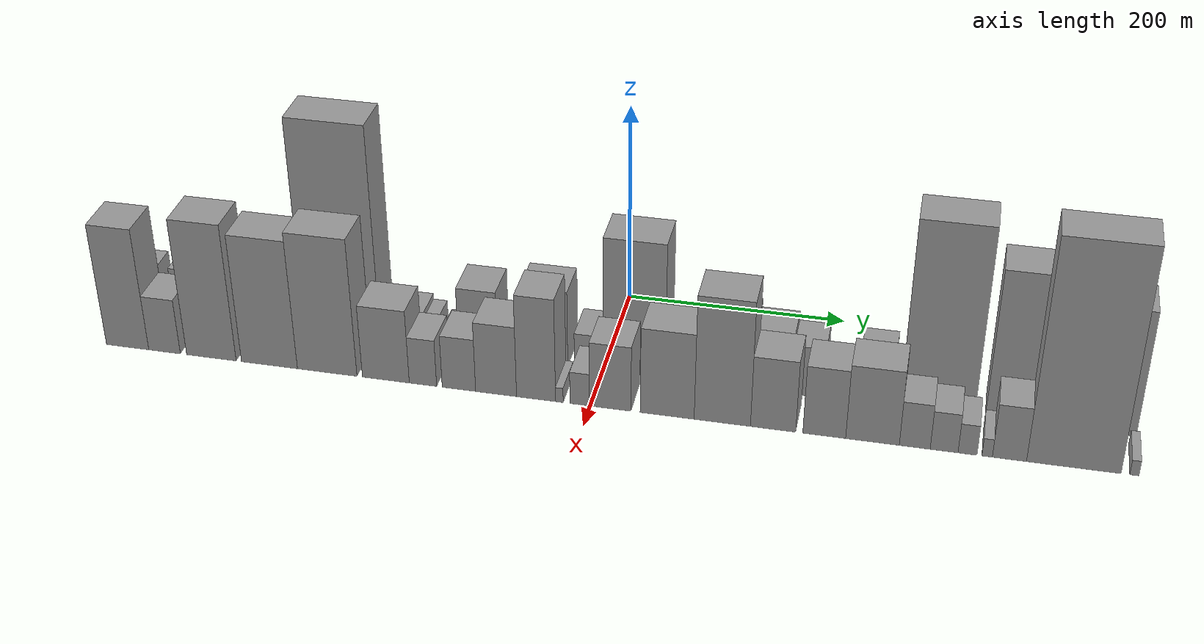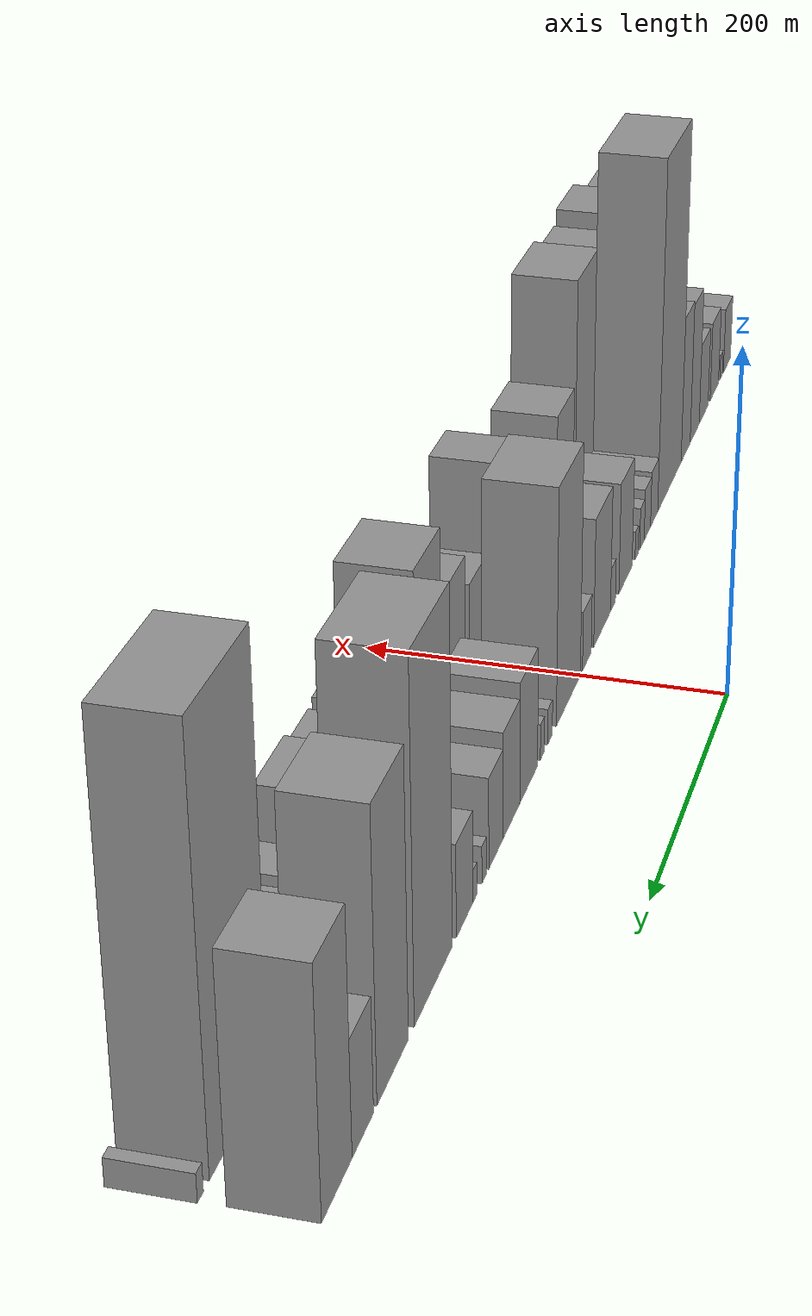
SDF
<sdf version="1.6">
 <world name="default">
  <scene>
   <sky><clouds><speed>12</speed></clouds></sky>
   <ambient>0.4 0.4 0.4 1</ambient>
   <background>0.7 0.7 0.7 1</background>
   <shadows>1</shadows>
  </scene>
  <gravity>0 0 -9.8066</gravity>
  <magnetic_field>6e-06 2.3e-05 -4.2e-05</magnetic_field>
  <physics default="0" name="default_physics" type="ode">
   <ode>
    <solver>
     <type>quick</type>
     <iters>10</iters>
     <sor>1.0</sor>
     <use_dynamic_moi_rescaling>0</use_dynamic_moi_rescaling>
    </solver>
    <constraints>
     <cfm>0</cfm>
     <erp>0.2</erp>
     <contact_max_correcting_vel>100</contact_max_correcting_vel>
     <contact_surface_layer>0.001</contact_surface_layer>
    </constraints>
   </ode>
   <max_step_size>0.004</max_step_size>
   <real_time_factor>1</real_time_factor>
   <real_time_update_rate>250</real_time_update_rate>
  </physics>
  <light name="sun" type="directional">
   <pose>0 0 10 0 0 0</pose>
   <diffuse>0.8 0.8 0.8 1</diffuse>
   <specular>0.2 0.2 0.2 1</specular>
   <attenuation>
    <range>1000</range>
    <constant>0.9</constant>
    <linear>0.01</linear>
    <quadratic>0.001</quadratic>
   </attenuation>
   <direction>-0.5 0.1 -0.9</direction>
  </light>
  <model name="building_1">
   <static>1</static>
   <pose>100.0000 -431.0499 0 0.000000 0.000000 0.000000</pose>
   <link name="link">
    <pose>0 0 22.50 0 0 0</pose>
    <collision name="collision"><geometry><box><size>40.0000 25.9003 45.0000</size></box></geometry></collision>
    <visual name="visual">
     <cast_shadows>0</cast_shadows>
     <geometry><box><size>40.0000 25.9003 45.0000</size></box></geometry>
     <material>
      <script>
       <uri>model://grey_wall/materials/scripts</uri>
       <uri>model://grey_wall/materials/textures</uri>
       <name>vrc/grey_wall</name>
      </script>
     </material>
    </visual>
   </link>
  </model>
  <model name="building_2">
   <static>1</static>
   <pose>100.0000 -409.7361 0 0.000000 0.000000 0.000000</pose>
   <link name="link">
    <pose>0 0 9.00 0 0 0</pose>
    <collision name="collision"><geometry><box><size>40.0000 8.7272 18.0000</size></box></geometry></collision>
    <visual name="visual">
     <cast_shadows>0</cast_shadows>
     <geometry><box><size>40.0000 8.7272 18.0000</size></box></geometry>
     <material>
      <script>
       <uri>model://grey_wall/materials/scripts</uri>
       <uri>model://grey_wall/materials/textures</uri>
       <name>vrc/grey_wall</name>
      </script>
     </material>
    </visual>
   </link>
  </model>
  <model name="building_3">
   <static>1</static>
   <pose>100.0000 -385.6956 0 0.000000 0.000000 0.000000</pose>
   <link name="link">
    <pose>0 0 27.00 0 0 0</pose>
    <collision name="collision"><geometry><box><size>40.0000 29.3539 54.0000</size></box></geometry></collision>
    <visual name="visual">
     <cast_shadows>0</cast_shadows>
     <geometry><box><size>40.0000 29.3539 54.0000</size></box></geometry>
     <material>
      <script>
       <uri>model://grey_wall/materials/scripts</uri>
       <uri>model://grey_wall/materials/textures</uri>
       <name>vrc/grey_wall</name>
      </script>
     </material>
    </visual>
   </link>
  </model>
  <model name="building_4">
   <static>1</static>
   <pose>100.0000 -348.9732 0 0.000000 0.000000 0.000000</pose>
   <link name="link">
    <pose>0 0 27.00 0 0 0</pose>
    <collision name="collision"><geometry><box><size>40.0000 30.0909 54.0000</size></box></geometry></collision>
    <visual name="visual">
     <cast_shadows>0</cast_shadows>
     <geometry><box><size>40.0000 30.0909 54.0000</size></box></geometry>
     <material>
      <script>
       <uri>model://grey_wall/materials/scripts</uri>
       <uri>model://grey_wall/materials/textures</uri>
       <name>vrc/grey_wall</name>
      </script>
     </material>
    </visual>
   </link>
  </model>
  <model name="building_5">
   <static>1</static>
   <pose>100.0000 -318.9866 0 0.000000 0.000000 0.000000</pose>
   <link name="link">
    <pose>0 0 46.50 0 0 0</pose>
    <collision name="collision"><geometry><box><size>40.0000 29.8823 93.0000</size></box></geometry></collision>
    <visual name="visual">
     <cast_shadows>0</cast_shadows>
     <geometry><box><size>40.0000 29.8823 93.0000</size></box></geometry>
     <material>
      <script>
       <uri>model://grey_wall/materials/scripts</uri>
       <uri>model://grey_wall/materials/textures</uri>
       <name>vrc/grey_wall</name>
      </script>
     </material>
    </visual>
   </link>
  </model>
  <model name="building_6">
   <static>1</static>
   <pose>100.0000 -289.5992 0 0.000000 0.000000 0.000000</pose>
   <link name="link">
    <pose>0 0 48.00 0 0 0</pose>
    <collision name="collision"><geometry><box><size>40.0000 28.8924 96.0000</size></box></geometry></collision>
    <visual name="visual">
     <cast_shadows>0</cast_shadows>
     <geometry><box><size>40.0000 28.8924 96.0000</size></box></geometry>
     <material>
      <script>
       <uri>model://grey_wall/materials/scripts</uri>
       <uri>model://grey_wall/materials/textures</uri>
       <name>vrc/grey_wall</name>
      </script>
     </material>
    </visual>
   </link>
  </model>
  <model name="building_7">
   <static>1</static>
   <pose>100.0000 -239.4603 0 0.000000 0.000000 0.000000</pose>
   <link name="link">
    <pose>0 0 111.00 0 0 0</pose>
    <collision name="collision"><geometry><box><size>40.0000 71.3854 222.0000</size></box></geometry></collision>
    <visual name="visual">
     <cast_shadows>0</cast_shadows>
     <geometry><box><size>40.0000 71.3854 222.0000</size></box></geometry>
     <material>
      <script>
       <uri>model://grey_wall/materials/scripts</uri>
       <uri>model://grey_wall/materials/textures</uri>
       <name>vrc/grey_wall</name>
      </script>
     </material>
    </visual>
   </link>
  </model>
  <model name="building_8">
   <static>1</static>
   <pose>100.0000 -193.3095 0 0.000000 0.000000 0.000000</pose>
   <link name="link">
    <pose>0 0 18.00 0 0 0</pose>
    <collision name="collision"><geometry><box><size>40.0000 20.9163 36.0000</size></box></geometry></collision>
    <visual name="visual">
     <cast_shadows>0</cast_shadows>
     <geometry><box><size>40.0000 20.9163 36.0000</size></box></geometry>
     <material>
      <script>
       <uri>model://grey_wall/materials/scripts</uri>
       <uri>model://grey_wall/materials/textures</uri>
       <name>vrc/grey_wall</name>
      </script>
     </material>
    </visual>
   </link>
  </model>
  <model name="building_9">
   <static>1</static>
   <pose>100.0000 -173.7902 0 0.000000 0.000000 0.000000</pose>
   <link name="link">
    <pose>0 0 16.50 0 0 0</pose>
    <collision name="collision"><geometry><box><size>40.0000 18.1223 33.0000</size></box></geometry></collision>
    <visual name="visual">
     <cast_shadows>0</cast_shadows>
     <geometry><box><size>40.0000 18.1223 33.0000</size></box></geometry>
     <material>
      <script>
       <uri>model://grey_wall/materials/scripts</uri>
       <uri>model://grey_wall/materials/textures</uri>
       <name>vrc/grey_wall</name>
      </script>
     </material>
    </visual>
   </link>
  </model>
  <model name="building_10">
   <static>1</static>
   <pose>100.0000 -158.3925 0 0.000000 0.000000 0.000000</pose>
   <link name="link">
    <pose>0 0 13.50 0 0 0</pose>
    <collision name="collision"><geometry><box><size>40.0000 12.6730 27.0000</size></box></geometry></collision>
    <visual name="visual">
     <cast_shadows>0</cast_shadows>
     <geometry><box><size>40.0000 12.6730 27.0000</size></box></geometry>
     <material>
      <script>
       <uri>model://grey_wall/materials/scripts</uri>
       <uri>model://grey_wall/materials/textures</uri>
       <name>vrc/grey_wall</name>
      </script>
     </material>
    </visual>
   </link>
  </model>
  <model name="building_11">
   <static>1</static>
   <pose>100.0000 -143.6604 0 0.000000 0.000000 0.000000</pose>
   <link name="link">
    <pose>0 0 9.00 0 0 0</pose>
    <collision name="collision"><geometry><box><size>40.0000 8.7914 18.0000</size></box></geometry></collision>
    <visual name="visual">
     <cast_shadows>0</cast_shadows>
     <geometry><box><size>40.0000 8.7914 18.0000</size></box></geometry>
     <material>
      <script>
       <uri>model://grey_wall/materials/scripts</uri>
       <uri>model://grey_wall/materials/textures</uri>
       <name>vrc/grey_wall</name>
      </script>
     </material>
    </visual>
   </link>
  </model>
  <model name="building_12">
   <static>1</static>
   <pose>100.0000 -113.4471 0 0.000000 0.000000 0.000000</pose>
   <link name="link">
    <pose>0 0 34.50 0 0 0</pose>
    <collision name="collision"><geometry><box><size>40.0000 35.6351 69.0000</size></box></geometry></collision>
    <visual name="visual">
     <cast_shadows>0</cast_shadows>
     <geometry><box><size>40.0000 35.6351 69.0000</size></box></geometry>
     <material>
      <script>
       <uri>model://grey_wall/materials/scripts</uri>
       <uri>model://grey_wall/materials/textures</uri>
       <name>vrc/grey_wall</name>
      </script>
     </material>
    </visual>
   </link>
  </model>
  <model name="building_13">
   <static>1</static>
   <pose>100.0000 -80.2408 0 0.000000 0.000000 0.000000</pose>
   <link name="link">
    <pose>0 0 13.50 0 0 0</pose>
    <collision name="collision"><geometry><box><size>40.0000 12.7775 27.0000</size></box></geometry></collision>
    <visual name="visual">
     <cast_shadows>0</cast_shadows>
     <geometry><box><size>40.0000 12.7775 27.0000</size></box></geometry>
     <material>
      <script>
       <uri>model://grey_wall/materials/scripts</uri>
       <uri>model://grey_wall/materials/textures</uri>
       <name>vrc/grey_wall</name>
      </script>
     </material>
    </visual>
   </link>
  </model>
  <model name="building_14">
   <static>1</static>
   <pose>100.0000 -52.7818 0 0.000000 0.000000 0.000000</pose>
   <link name="link">
    <pose>0 0 39.00 0 0 0</pose>
    <collision name="collision"><geometry><box><size>40.0000 42.1404 78.0000</size></box></geometry></collision>
    <visual name="visual">
     <cast_shadows>0</cast_shadows>
     <geometry><box><size>40.0000 42.1404 78.0000</size></box></geometry>
     <material>
      <script>
       <uri>model://grey_wall/materials/scripts</uri>
       <uri>model://grey_wall/materials/textures</uri>
       <name>vrc/grey_wall</name>
      </script>
     </material>
    </visual>
   </link>
  </model>
  <model name="building_15">
   <static>1</static>
   <pose>100.0000 -15.1668 0 0.000000 0.000000 0.000000</pose>
   <link name="link">
    <pose>0 0 18.00 0 0 0</pose>
    <collision name="collision"><geometry><box><size>40.0000 21.0897 36.0000</size></box></geometry></collision>
    <visual name="visual">
     <cast_shadows>0</cast_shadows>
     <geometry><box><size>40.0000 21.0897 36.0000</size></box></geometry>
     <material>
      <script>
       <uri>model://grey_wall/materials/scripts</uri>
       <uri>model://grey_wall/materials/textures</uri>
       <name>vrc/grey_wall</name>
      </script>
     </material>
    </visual>
   </link>
  </model>
  <model name="building_16">
   <static>1</static>
   <pose>100.0000 27.8969 0 0.000000 0.000000 0.000000</pose>
   <link name="link">
    <pose>0 0 69.00 0 0 0</pose>
    <collision name="collision"><geometry><box><size>40.0000 55.0377 138.0000</size></box></geometry></collision>
    <visual name="visual">
     <cast_shadows>0</cast_shadows>
     <geometry><box><size>40.0000 55.0377 138.0000</size></box></geometry>
     <material>
      <script>
       <uri>model://grey_wall/materials/scripts</uri>
       <uri>model://grey_wall/materials/textures</uri>
       <name>vrc/grey_wall</name>
      </script>
     </material>
    </visual>
   </link>
  </model>
  <model name="building_17">
   <static>1</static>
   <pose>100.0000 69.4523 0 0.000000 0.000000 0.000000</pose>
   <link name="link">
    <pose>0 0 10.50 0 0 0</pose>
    <collision name="collision"><geometry><box><size>40.0000 10.0732 21.0000</size></box></geometry></collision>
    <visual name="visual">
     <cast_shadows>0</cast_shadows>
     <geometry><box><size>40.0000 10.0732 21.0000</size></box></geometry>
     <material>
      <script>
       <uri>model://grey_wall/materials/scripts</uri>
       <uri>model://grey_wall/materials/textures</uri>
       <name>vrc/grey_wall</name>
      </script>
     </material>
    </visual>
   </link>
  </model>
  <model name="building_18">
   <static>1</static>
   <pose>100.0000 85.8732 0 0.000000 0.000000 0.000000</pose>
   <link name="link">
    <pose>0 0 10.50 0 0 0</pose>
    <collision name="collision"><geometry><box><size>40.0000 8.7685 21.0000</size></box></geometry></collision>
    <visual name="visual">
     <cast_shadows>0</cast_shadows>
     <geometry><box><size>40.0000 8.7685 21.0000</size></box></geometry>
     <material>
      <script>
       <uri>model://grey_wall/materials/scripts</uri>
       <uri>model://grey_wall/materials/textures</uri>
       <name>vrc/grey_wall</name>
      </script>
     </material>
    </visual>
   </link>
  </model>
  <model name="building_19">
   <static>1</static>
   <pose>100.0000 114.6705 0 0.000000 0.000000 0.000000</pose>
   <link name="link">
    <pose>0 0 34.50 0 0 0</pose>
    <collision name="collision"><geometry><box><size>40.0000 36.8261 69.0000</size></box></geometry></collision>
    <visual name="visual">
     <cast_shadows>0</cast_shadows>
     <geometry><box><size>40.0000 36.8261 69.0000</size></box></geometry>
     <material>
      <script>
       <uri>model://grey_wall/materials/scripts</uri>
       <uri>model://grey_wall/materials/textures</uri>
       <name>vrc/grey_wall</name>
      </script>
     </material>
    </visual>
   </link>
  </model>
  <model name="building_20">
   <static>1</static>
   <pose>100.0000 149.6010 0 0.000000 0.000000 0.000000</pose>
   <link name="link">
    <pose>0 0 30.00 0 0 0</pose>
    <collision name="collision"><geometry><box><size>40.0000 33.0349 60.0000</size></box></geometry></collision>
    <visual name="visual">
     <cast_shadows>0</cast_shadows>
     <geometry><box><size>40.0000 33.0349 60.0000</size></box></geometry>
     <material>
      <script>
       <uri>model://grey_wall/materials/scripts</uri>
       <uri>model://grey_wall/materials/textures</uri>
       <name>vrc/grey_wall</name>
      </script>
     </material>
    </visual>
   </link>
  </model>
  <model name="building_21">
   <static>1</static>
   <pose>100.0000 179.8308 0 0.000000 0.000000 0.000000</pose>
   <link name="link">
    <pose>0 0 25.50 0 0 0</pose>
    <collision name="collision"><geometry><box><size>40.0000 27.4247 51.0000</size></box></geometry></collision>
    <visual name="visual">
     <cast_shadows>0</cast_shadows>
     <geometry><box><size>40.0000 27.4247 51.0000</size></box></geometry>
     <material>
      <script>
       <uri>model://grey_wall/materials/scripts</uri>
       <uri>model://grey_wall/materials/textures</uri>
       <name>vrc/grey_wall</name>
      </script>
     </material>
    </visual>
   </link>
  </model>
  <model name="building_22">
   <static>1</static>
   <pose>100.0000 201.9559 0 0.000000 0.000000 0.000000</pose>
   <link name="link">
    <pose>0 0 10.50 0 0 0</pose>
    <collision name="collision"><geometry><box><size>40.0000 8.8255 21.0000</size></box></geometry></collision>
    <visual name="visual">
     <cast_shadows>0</cast_shadows>
     <geometry><box><size>40.0000 8.8255 21.0000</size></box></geometry>
     <material>
      <script>
       <uri>model://grey_wall/materials/scripts</uri>
       <uri>model://grey_wall/materials/textures</uri>
       <name>vrc/grey_wall</name>
      </script>
     </material>
    </visual>
   </link>
  </model>
  <model name="building_23">
   <static>1</static>
   <pose>100.0000 218.9924 0 0.000000 0.000000 0.000000</pose>
   <link name="link">
    <pose>0 0 9.00 0 0 0</pose>
    <collision name="collision"><geometry><box><size>40.0000 7.2474 18.0000</size></box></geometry></collision>
    <visual name="visual">
     <cast_shadows>0</cast_shadows>
     <geometry><box><size>40.0000 7.2474 18.0000</size></box></geometry>
     <material>
      <script>
       <uri>model://grey_wall/materials/scripts</uri>
       <uri>model://grey_wall/materials/textures</uri>
       <name>vrc/grey_wall</name>
      </script>
     </material>
    </visual>
   </link>
  </model>
  <model name="building_24">
   <static>1</static>
   <pose>100.0000 237.4584 0 0.000000 0.000000 0.000000</pose>
   <link name="link">
    <pose>0 0 25.50 0 0 0</pose>
    <collision name="collision"><geometry><box><size>40.0000 29.6846 51.0000</size></box></geometry></collision>
    <visual name="visual">
     <cast_shadows>0</cast_shadows>
     <geometry><box><size>40.0000 29.6846 51.0000</size></box></geometry>
     <material>
      <script>
       <uri>model://grey_wall/materials/scripts</uri>
       <uri>model://grey_wall/materials/textures</uri>
       <name>vrc/grey_wall</name>
      </script>
     </material>
    </visual>
   </link>
  </model>
  <model name="building_25">
   <static>1</static>
   <pose>100.0000 290.7979 0 0.000000 0.000000 0.000000</pose>
   <link name="link">
    <pose>0 0 94.50 0 0 0</pose>
    <collision name="collision"><geometry><box><size>40.0000 62.9945 189.0000</size></box></geometry></collision>
    <visual name="visual">
     <cast_shadows>0</cast_shadows>
     <geometry><box><size>40.0000 62.9945 189.0000</size></box></geometry>
     <material>
      <script>
       <uri>model://grey_wall/materials/scripts</uri>
       <uri>model://grey_wall/materials/textures</uri>
       <name>vrc/grey_wall</name>
      </script>
     </material>
    </visual>
   </link>
  </model>
  <model name="building_26">
   <static>1</static>
   <pose>100.0000 355.1577 0 0.000000 0.000000 0.000000</pose>
   <link name="link">
    <pose>0 0 75.00 0 0 0</pose>
    <collision name="collision"><geometry><box><size>40.0000 47.7251 150.0000</size></box></geometry></collision>
    <visual name="visual">
     <cast_shadows>0</cast_shadows>
     <geometry><box><size>40.0000 47.7251 150.0000</size></box></geometry>
     <material>
      <script>
       <uri>model://grey_wall/materials/scripts</uri>
       <uri>model://grey_wall/materials/textures</uri>
       <name>vrc/grey_wall</name>
      </script>
     </material>
    </visual>
   </link>
  </model>
  <model name="building_27">
   <static>1</static>
   <pose>100.0000 399.2218 0 0.000000 0.000000 0.000000</pose>
   <link name="link">
    <pose>0 0 30.00 0 0 0</pose>
    <collision name="collision"><geometry><box><size>40.0000 30.4030 60.0000</size></box></geometry></collision>
    <visual name="visual">
     <cast_shadows>0</cast_shadows>
     <geometry><box><size>40.0000 30.4030 60.0000</size></box></geometry>
     <material>
      <script>
       <uri>model://grey_wall/materials/scripts</uri>
       <uri>model://grey_wall/materials/textures</uri>
       <name>vrc/grey_wall</name>
      </script>
     </material>
    </visual>
   </link>
  </model>
  <model name="building_28">
   <static>1</static>
   <pose>100.0000 435.1679 0 0.000000 0.000000 0.000000</pose>
   <link name="link">
    <pose>0 0 63.00 0 0 0</pose>
    <collision name="collision"><geometry><box><size>40.0000 41.4891 126.0000</size></box></geometry></collision>
    <visual name="visual">
     <cast_shadows>0</cast_shadows>
     <geometry><box><size>40.0000 41.4891 126.0000</size></box></geometry>
     <material>
      <script>
       <uri>model://grey_wall/materials/scripts</uri>
       <uri>model://grey_wall/materials/textures</uri>
       <name>vrc/grey_wall</name>
      </script>
     </material>
    </visual>
   </link>
  </model>
  <model name="building_29">
   <static>1</static>
   <pose>152.0000 -423.7714 0 0.000000 0.000000 0.000000</pose>
   <link name="link">
    <pose>0 0 63.00 0 0 0</pose>
    <collision name="collision"><geometry><box><size>40.0000 40.4572 126.0000</size></box></geometry></collision>
    <visual name="visual">
     <cast_shadows>0</cast_shadows>
     <geometry><box><size>40.0000 40.4572 126.0000</size></box></geometry>
     <material>
      <script>
       <uri>model://grey_wall/materials/scripts</uri>
       <uri>model://grey_wall/materials/textures</uri>
       <name>vrc/grey_wall</name>
      </script>
     </material>
    </visual>
   </link>
  </model>
  <model name="building_30">
   <static>1</static>
   <pose>152.0000 -388.5520 0 0.000000 0.000000 0.000000</pose>
   <link name="link">
    <pose>0 0 28.50 0 0 0</pose>
    <collision name="collision"><geometry><box><size>40.0000 29.9816 57.0000</size></box></geometry></collision>
    <visual name="visual">
     <cast_shadows>0</cast_shadows>
     <geometry><box><size>40.0000 29.9816 57.0000</size></box></geometry>
     <material>
      <script>
       <uri>model://grey_wall/materials/scripts</uri>
       <uri>model://grey_wall/materials/textures</uri>
       <name>vrc/grey_wall</name>
      </script>
     </material>
    </visual>
   </link>
  </model>
  <model name="building_31">
   <static>1</static>
   <pose>152.0000 -344.2569 0 0.000000 0.000000 0.000000</pose>
   <link name="link">
    <pose>0 0 70.50 0 0 0</pose>
    <collision name="collision"><geometry><box><size>40.0000 46.6085 141.0000</size></box></geometry></collision>
    <visual name="visual">
     <cast_shadows>0</cast_shadows>
     <geometry><box><size>40.0000 46.6085 141.0000</size></box></geometry>
     <material>
      <script>
       <uri>model://grey_wall/materials/scripts</uri>
       <uri>model://grey_wall/materials/textures</uri>
       <name>vrc/grey_wall</name>
      </script>
     </material>
    </visual>
   </link>
  </model>
  <model name="building_32">
   <static>1</static>
   <pose>152.0000 -289.8983 0 0.000000 0.000000 0.000000</pose>
   <link name="link">
    <pose>0 0 66.00 0 0 0</pose>
    <collision name="collision"><geometry><box><size>40.0000 52.1088 132.0000</size></box></geometry></collision>
    <visual name="visual">
     <cast_shadows>0</cast_shadows>
     <geometry><box><size>40.0000 52.1088 132.0000</size></box></geometry>
     <material>
      <script>
       <uri>model://grey_wall/materials/scripts</uri>
       <uri>model://grey_wall/materials/textures</uri>
       <name>vrc/grey_wall</name>
      </script>
     </material>
    </visual>
   </link>
  </model>
  <model name="building_33">
   <static>1</static>
   <pose>152.0000 -236.4168 0 0.000000 0.000000 0.000000</pose>
   <link name="link">
    <pose>0 0 70.50 0 0 0</pose>
    <collision name="collision"><geometry><box><size>40.0000 54.8543 141.0000</size></box></geometry></collision>
    <visual name="visual">
     <cast_shadows>0</cast_shadows>
     <geometry><box><size>40.0000 54.8543 141.0000</size></box></geometry>
     <material>
      <script>
       <uri>model://grey_wall/materials/scripts</uri>
       <uri>model://grey_wall/materials/textures</uri>
       <name>vrc/grey_wall</name>
      </script>
     </material>
    </visual>
   </link>
  </model>
  <model name="building_34">
   <static>1</static>
   <pose>152.0000 -182.6708 0 0.000000 0.000000 0.000000</pose>
   <link name="link">
    <pose>0 0 37.50 0 0 0</pose>
    <collision name="collision"><geometry><box><size>40.0000 42.6376 75.0000</size></box></geometry></collision>
    <visual name="visual">
     <cast_shadows>0</cast_shadows>
     <geometry><box><size>40.0000 42.6376 75.0000</size></box></geometry>
     <material>
      <script>
       <uri>model://grey_wall/materials/scripts</uri>
       <uri>model://grey_wall/materials/textures</uri>
       <name>vrc/grey_wall</name>
      </script>
     </material>
    </visual>
   </link>
  </model>
  <model name="building_35">
   <static>1</static>
   <pose>152.0000 -148.9712 0 0.000000 0.000000 0.000000</pose>
   <link name="link">
    <pose>0 0 24.00 0 0 0</pose>
    <collision name="collision"><geometry><box><size>40.0000 24.7617 48.0000</size></box></geometry></collision>
    <visual name="visual">
     <cast_shadows>0</cast_shadows>
     <geometry><box><size>40.0000 24.7617 48.0000</size></box></geometry>
     <material>
      <script>
       <uri>model://grey_wall/materials/scripts</uri>
       <uri>model://grey_wall/materials/textures</uri>
       <name>vrc/grey_wall</name>
      </script>
     </material>
    </visual>
   </link>
  </model>
  <model name="building_36">
   <static>1</static>
   <pose>152.0000 -116.5907 0 0.000000 0.000000 0.000000</pose>
   <link name="link">
    <pose>0 0 27.00 0 0 0</pose>
    <collision name="collision"><geometry><box><size>40.0000 29.9994 54.0000</size></box></geometry></collision>
    <visual name="visual">
     <cast_shadows>0</cast_shadows>
     <geometry><box><size>40.0000 29.9994 54.0000</size></box></geometry>
     <material>
      <script>
       <uri>model://grey_wall/materials/scripts</uri>
       <uri>model://grey_wall/materials/textures</uri>
       <name>vrc/grey_wall</name>
      </script>
     </material>
    </visual>
   </link>
  </model>
  <model name="building_37">
   <static>1</static>
   <pose>152.0000 -83.3506 0 0.000000 0.000000 0.000000</pose>
   <link name="link">
    <pose>0 0 36.00 0 0 0</pose>
    <collision name="collision"><geometry><box><size>40.0000 36.4808 72.0000</size></box></geometry></collision>
    <visual name="visual">
     <cast_shadows>0</cast_shadows>
     <geometry><box><size>40.0000 36.4808 72.0000</size></box></geometry>
     <material>
      <script>
       <uri>model://grey_wall/materials/scripts</uri>
       <uri>model://grey_wall/materials/textures</uri>
       <name>vrc/grey_wall</name>
      </script>
     </material>
    </visual>
   </link>
  </model>
  <model name="building_38">
   <static>1</static>
   <pose>152.0000 -47.8489 0 0.000000 0.000000 0.000000</pose>
   <link name="link">
    <pose>0 0 52.50 0 0 0</pose>
    <collision name="collision"><geometry><box><size>40.0000 34.5227 105.0000</size></box></geometry></collision>
    <visual name="visual">
     <cast_shadows>0</cast_shadows>
     <geometry><box><size>40.0000 34.5227 105.0000</size></box></geometry>
     <material>
      <script>
       <uri>model://grey_wall/materials/scripts</uri>
       <uri>model://grey_wall/materials/textures</uri>
       <name>vrc/grey_wall</name>
      </script>
     </material>
    </visual>
   </link>
  </model>
  <model name="building_39">
   <static>1</static>
   <pose>152.0000 -27.2419 0 0.000000 0.000000 0.000000</pose>
   <link name="link">
    <pose>0 0 7.50 0 0 0</pose>
    <collision name="collision"><geometry><box><size>40.0000 6.6913 15.0000</size></box></geometry></collision>
    <visual name="visual">
     <cast_shadows>0</cast_shadows>
     <geometry><box><size>40.0000 6.6913 15.0000</size></box></geometry>
     <material>
      <script>
       <uri>model://grey_wall/materials/scripts</uri>
       <uri>model://grey_wall/materials/textures</uri>
       <name>vrc/grey_wall</name>
      </script>
     </material>
    </visual>
   </link>
  </model>
  <model name="building_40">
   <static>1</static>
   <pose>152.0000 -9.4666 0 0.000000 0.000000 0.000000</pose>
   <link name="link">
    <pose>0 0 16.50 0 0 0</pose>
    <collision name="collision"><geometry><box><size>40.0000 16.8592 33.0000</size></box></geometry></collision>
    <visual name="visual">
     <cast_shadows>0</cast_shadows>
     <geometry><box><size>40.0000 16.8592 33.0000</size></box></geometry>
     <material>
      <script>
       <uri>model://grey_wall/materials/scripts</uri>
       <uri>model://grey_wall/materials/textures</uri>
       <name>vrc/grey_wall</name>
      </script>
     </material>
    </visual>
   </link>
  </model>
  <model name="building_41">
   <static>1</static>
   <pose>152.0000 17.1698 0 0.000000 0.000000 0.000000</pose>
   <link name="link">
    <pose>0 0 33.00 0 0 0</pose>
    <collision name="collision"><geometry><box><size>40.0000 36.4137 66.0000</size></box></geometry></collision>
    <visual name="visual">
     <cast_shadows>0</cast_shadows>
     <geometry><box><size>40.0000 36.4137 66.0000</size></box></geometry>
     <material>
      <script>
       <uri>model://grey_wall/materials/scripts</uri>
       <uri>model://grey_wall/materials/textures</uri>
       <name>vrc/grey_wall</name>
      </script>
     </material>
    </visual>
   </link>
  </model>
  <model name="building_42">
   <static>1</static>
   <pose>152.0000 66.6796 0 0.000000 0.000000 0.000000</pose>
   <link name="link">
    <pose>0 0 43.50 0 0 0</pose>
    <collision name="collision"><geometry><box><size>40.0000 46.6059 87.0000</size></box></geometry></collision>
    <visual name="visual">
     <cast_shadows>0</cast_shadows>
     <geometry><box><size>40.0000 46.6059 87.0000</size></box></geometry>
     <material>
      <script>
       <uri>model://grey_wall/materials/scripts</uri>
       <uri>model://grey_wall/materials/textures</uri>
       <name>vrc/grey_wall</name>
      </script>
     </material>
    </visual>
   </link>
  </model>
  <model name="building_43">
   <static>1</static>
   <pose>152.0000 114.0362 0 0.000000 0.000000 0.000000</pose>
   <link name="link">
    <pose>0 0 63.00 0 0 0</pose>
    <collision name="collision"><geometry><box><size>40.0000 48.1072 126.0000</size></box></geometry></collision>
    <visual name="visual">
     <cast_shadows>0</cast_shadows>
     <geometry><box><size>40.0000 48.1072 126.0000</size></box></geometry>
     <material>
      <script>
       <uri>model://grey_wall/materials/scripts</uri>
       <uri>model://grey_wall/materials/textures</uri>
       <name>vrc/grey_wall</name>
      </script>
     </material>
    </visual>
   </link>
  </model>
  <model name="building_44">
   <static>1</static>
   <pose>152.0000 157.2365 0 0.000000 0.000000 0.000000</pose>
   <link name="link">
    <pose>0 0 36.00 0 0 0</pose>
    <collision name="collision"><geometry><box><size>40.0000 38.2934 72.0000</size></box></geometry></collision>
    <visual name="visual">
     <cast_shadows>0</cast_shadows>
     <geometry><box><size>40.0000 38.2934 72.0000</size></box></geometry>
     <material>
      <script>
       <uri>model://grey_wall/materials/scripts</uri>
       <uri>model://grey_wall/materials/textures</uri>
       <name>vrc/grey_wall</name>
      </script>
     </material>
    </visual>
   </link>
  </model>
  <model name="building_45">
   <static>1</static>
   <pose>152.0000 200.3274 0 0.000000 0.000000 0.000000</pose>
   <link name="link">
    <pose>0 0 34.50 0 0 0</pose>
    <collision name="collision"><geometry><box><size>40.0000 35.8884 69.0000</size></box></geometry></collision>
    <visual name="visual">
     <cast_shadows>0</cast_shadows>
     <geometry><box><size>40.0000 35.8884 69.0000</size></box></geometry>
     <material>
      <script>
       <uri>model://grey_wall/materials/scripts</uri>
       <uri>model://grey_wall/materials/textures</uri>
       <name>vrc/grey_wall</name>
      </script>
     </material>
    </visual>
   </link>
  </model>
  <model name="building_46">
   <static>1</static>
   <pose>152.0000 240.5533 0 0.000000 0.000000 0.000000</pose>
   <link name="link">
    <pose>0 0 37.50 0 0 0</pose>
    <collision name="collision"><geometry><box><size>40.0000 44.5635 75.0000</size></box></geometry></collision>
    <visual name="visual">
     <cast_shadows>0</cast_shadows>
     <geometry><box><size>40.0000 44.5635 75.0000</size></box></geometry>
     <material>
      <script>
       <uri>model://grey_wall/materials/scripts</uri>
       <uri>model://grey_wall/materials/textures</uri>
       <name>vrc/grey_wall</name>
      </script>
     </material>
    </visual>
   </link>
  </model>
  <model name="building_47">
   <static>1</static>
   <pose>152.0000 275.5638 0 0.000000 0.000000 0.000000</pose>
   <link name="link">
    <pose>0 0 22.50 0 0 0</pose>
    <collision name="collision"><geometry><box><size>40.0000 25.4574 45.0000</size></box></geometry></collision>
    <visual name="visual">
     <cast_shadows>0</cast_shadows>
     <geometry><box><size>40.0000 25.4574 45.0000</size></box></geometry>
     <material>
      <script>
       <uri>model://grey_wall/materials/scripts</uri>
       <uri>model://grey_wall/materials/textures</uri>
       <name>vrc/grey_wall</name>
      </script>
     </material>
    </visual>
   </link>
  </model>
  <model name="building_48">
   <static>1</static>
   <pose>152.0000 299.7214 0 0.000000 0.000000 0.000000</pose>
   <link name="link">
    <pose>0 0 19.50 0 0 0</pose>
    <collision name="collision"><geometry><box><size>40.0000 22.8578 39.0000</size></box></geometry></collision>
    <visual name="visual">
     <cast_shadows>0</cast_shadows>
     <geometry><box><size>40.0000 22.8578 39.0000</size></box></geometry>
     <material>
      <script>
       <uri>model://grey_wall/materials/scripts</uri>
       <uri>model://grey_wall/materials/textures</uri>
       <name>vrc/grey_wall</name>
      </script>
     </material>
    </visual>
   </link>
  </model>
  <model name="building_49">
   <static>1</static>
   <pose>152.0000 318.9191 0 0.000000 0.000000 0.000000</pose>
   <link name="link">
    <pose>0 0 15.00 0 0 0</pose>
    <collision name="collision"><geometry><box><size>40.0000 15.5376 30.0000</size></box></geometry></collision>
    <visual name="visual">
     <cast_shadows>0</cast_shadows>
     <geometry><box><size>40.0000 15.5376 30.0000</size></box></geometry>
     <material>
      <script>
       <uri>model://grey_wall/materials/scripts</uri>
       <uri>model://grey_wall/materials/textures</uri>
       <name>vrc/grey_wall</name>
      </script>
     </material>
    </visual>
   </link>
  </model>
  <model name="building_50">
   <static>1</static>
   <pose>152.0000 334.9113 0 0.000000 0.000000 0.000000</pose>
   <link name="link">
    <pose>0 0 9.00 0 0 0</pose>
    <collision name="collision"><geometry><box><size>40.0000 8.4468 18.0000</size></box></geometry></collision>
    <visual name="visual">
     <cast_shadows>0</cast_shadows>
     <geometry><box><size>40.0000 8.4468 18.0000</size></box></geometry>
     <material>
      <script>
       <uri>model://grey_wall/materials/scripts</uri>
       <uri>model://grey_wall/materials/textures</uri>
       <name>vrc/grey_wall</name>
      </script>
     </material>
    </visual>
   </link>
  </model>
  <model name="building_51">
   <static>1</static>
   <pose>152.0000 352.9756 0 0.000000 0.000000 0.000000</pose>
   <link name="link">
    <pose>0 0 27.00 0 0 0</pose>
    <collision name="collision"><geometry><box><size>40.0000 27.6819 54.0000</size></box></geometry></collision>
    <visual name="visual">
     <cast_shadows>0</cast_shadows>
     <geometry><box><size>40.0000 27.6819 54.0000</size></box></geometry>
     <material>
      <script>
       <uri>model://grey_wall/materials/scripts</uri>
       <uri>model://grey_wall/materials/textures</uri>
       <name>vrc/grey_wall</name>
      </script>
     </material>
    </visual>
   </link>
  </model>
  <model name="building_52">
   <static>1</static>
   <pose>152.0000 404.7036 0 0.000000 0.000000 0.000000</pose>
   <link name="link">
    <pose>0 0 109.50 0 0 0</pose>
    <collision name="collision"><geometry><box><size>40.0000 75.7741 219.0000</size></box></geometry></collision>
    <visual name="visual">
     <cast_shadows>0</cast_shadows>
     <geometry><box><size>40.0000 75.7741 219.0000</size></box></geometry>
     <material>
      <script>
       <uri>model://grey_wall/materials/scripts</uri>
       <uri>model://grey_wall/materials/textures</uri>
       <name>vrc/grey_wall</name>
      </script>
     </material>
    </visual>
   </link>
  </model>
  <model name="building_53">
   <static>1</static>
   <pose>152.0000 453.2103 0 0.000000 0.000000 0.000000</pose>
   <link name="link">
    <pose>0 0 7.50 0 0 0</pose>
    <collision name="collision"><geometry><box><size>40.0000 7.2392 15.0000</size></box></geometry></collision>
    <visual name="visual">
     <cast_shadows>0</cast_shadows>
     <geometry><box><size>40.0000 7.2392 15.0000</size></box></geometry>
     <material>
      <script>
       <uri>model://grey_wall/materials/scripts</uri>
       <uri>model://grey_wall/materials/textures</uri>
       <name>vrc/grey_wall</name>
      </script>
     </material>
    </visual>
   </link>
  </model>
 </world>
</sdf>
